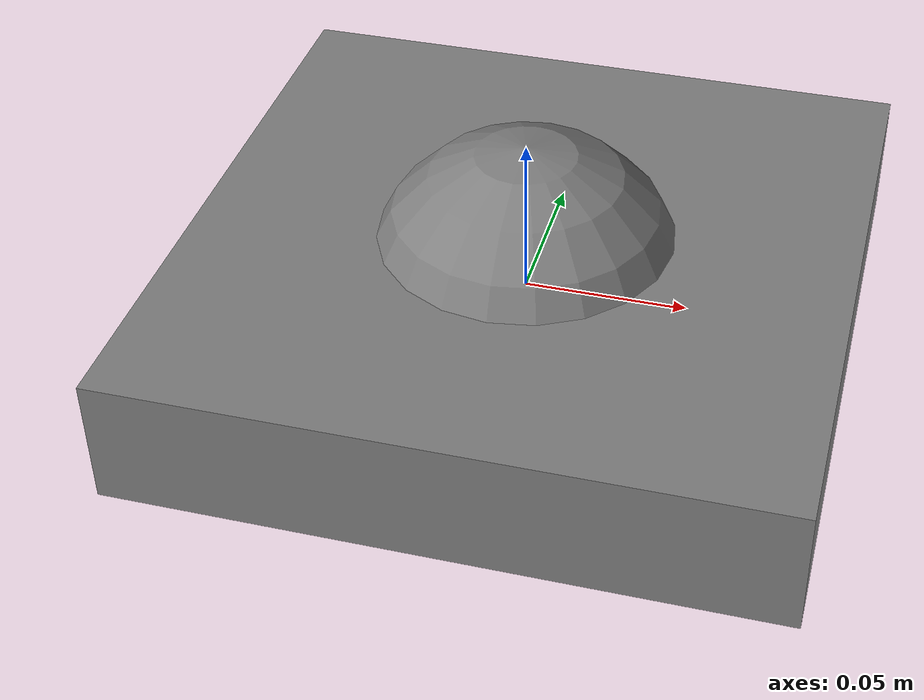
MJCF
<mujoco model="stool_support">
  <compiler angle="radian" />

  <worldbody>
   <body name="stool_support" pos="0 0 0">

      <freejoint name="stool_support_root" />
      <site name="stool_support_root" pos="0 0 0" size="0.05" type="sphere" rgba="0.5 0.5 0.5 1"/>
      <geom type="box" size="0.1 0.1 0.02" pos="0 0 0"/>
    </body>
  </worldbody>
</mujoco>
